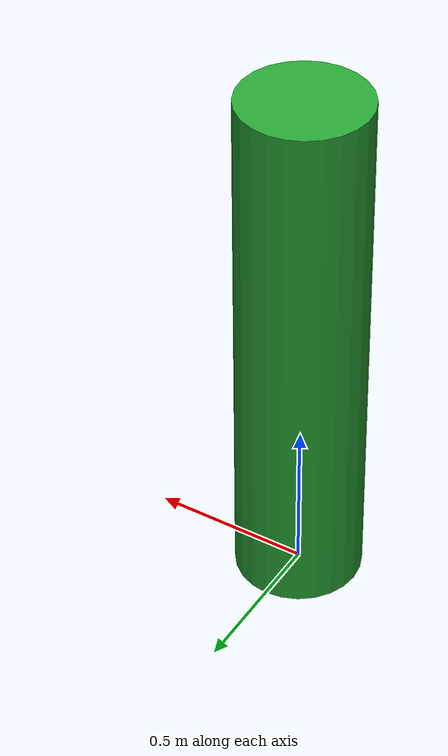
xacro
<?xml version="1.0" encoding="UTF-8"?>
<!-- Adapted from:
     https://github.com/ethz-asl/deep_interaction_modeling/blob/master/
     sf_model/gazebo_sim/urdf/pedestrian.xacro -->
<robot name="pedestrian" xmlns:xacro="http://www.ros.org/wiki/xacro">

  <xacro:property name="height" value="1.7"/>
  <xacro:property name="radius" value="0.2"/>
  <xacro:property name="mass" value="1"/>
  <xacro:property name="PI" value="3.141592654"/>
  <link name="base_link">
    <collision>
      <origin xyz="0 0 ${height/2}" rpy="0 0 0"/>
      <geometry>
        <cylinder length="${height}" radius="${radius}"/>
      </geometry>
    </collision>

    <visual>
      <origin xyz="0 0 ${height/2}" rpy="0 0 0"/>
      <geometry>
        <cylinder length="${height}" radius="${radius}"/>
      </geometry>
    </visual>

    <!-- Inertia origin must be very low on the ground to insure stable
         simulation behavior. -->
    <inertial>
      <origin xyz="0 0 0" rpy="0 0 0"/>
      <mass value="${mass}"/>
      <inertia ixx="${mass/12.0 * (3*radius*radius + 4.0*height*height)}"
               ixy="0.0" ixz="0.0"
               iyy="${mass/12.0 * (3*radius*radius + 4.0*height*height)}"
               iyz="0.0" izz="${mass/2.0 * radius*radius}"/>
    </inertial>
  </link>

  <gazebo reference="base_link">
    <material>Gazebo/Green</material>
    <turnGravityOff>true</turnGravityOff>
    <selfCollide>false</selfCollide>
  </gazebo>

  <!-- Plugin for controlling the XY sliding of the robot -->
  <gazebo>
    <plugin name="object_controller" filename="libgazebo_ros_planar_move.so">
      <commandTopic>cmd_vel</commandTopic>
      <odometryTopic>odom</odometryTopic>
      <odometryFrame>world</odometryFrame>
      <odometryRate>10.0</odometryRate>
      <robotBaseFrame>$(arg prefix)/base_link</robotBaseFrame>
    </plugin>
  </gazebo>
</robot>
